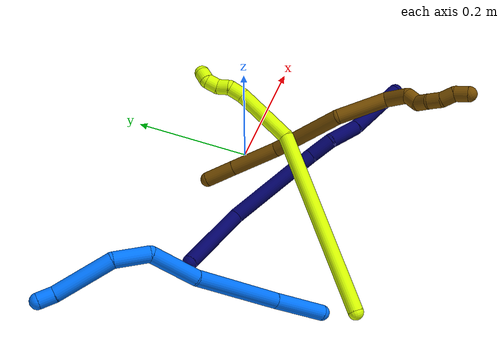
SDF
<sdf version="1.7">
 <world name="default">
  <model name="7">
   <static>0</static>
   <link name="7">
    <collision name="collision-cylinder-e_1_1_4">
     <pose>0.04741 -0.020909 0.041495 0.466748 0.79546 0.19907</pose>
     <geometry><cylinder><radius>0.0125</radius><length>0.132766</length></cylinder></geometry>
     <surface>
      <friction><ode><mu>1.16</mu><mu2>1.16</mu2><slip1>0</slip1><slip2>0</slip2></ode></friction>
      <contact><ode><kp>1e+06</kp><kd>1</kd><max_vel>0</max_vel><min_depth>0.001</min_depth></ode></contact>
     </surface>
    </collision>
    <visual name="visual-cylinder-e_1_1_4">
     <pose>0.04741 -0.020909 0.041495 0.466748 0.79546 0.19907</pose>
     <geometry><cylinder><radius>0.0125</radius><length>0.132766</length></cylinder></geometry>
     <material><ambient>0.003922 0 0.403922 1</ambient></material>
    </visual>
    <collision name="collision-cylinder-e_2_4_5">
     <pose>0.121142 -0.051365 0.159479 0.12418 0.329063 0.020644</pose>
     <geometry><cylinder><radius>0.0125</radius><length>0.162906</length></cylinder></geometry>
     <surface>
      <friction><ode><mu>1.16</mu><mu2>1.16</mu2><slip1>0</slip1><slip2>0</slip2></ode></friction>
      <contact><ode><kp>1e+06</kp><kd>1</kd><max_vel>0</max_vel><min_depth>0.001</min_depth></ode></contact>
     </surface>
    </collision>
    <visual name="visual-cylinder-e_2_4_5">
     <pose>0.121142 -0.051365 0.159479 0.12418 0.329063 0.020644</pose>
     <geometry><cylinder><radius>0.0125</radius><length>0.162906</length></cylinder></geometry>
     <material><ambient>0.003922 0 0.403922 1</ambient></material>
    </visual>
    <collision name="collision-cylinder-e_3_5_6">
     <pose>0.15079 -0.061764 0.256421 0.041601 0.161098 0.003359</pose>
     <geometry><cylinder><radius>0.0125</radius><length>0.041477</length></cylinder></geometry>
     <surface>
      <friction><ode><mu>1.16</mu><mu2>1.16</mu2><slip1>0</slip1><slip2>0</slip2></ode></friction>
      <contact><ode><kp>1e+06</kp><kd>1</kd><max_vel>0</max_vel><min_depth>0.001</min_depth></ode></contact>
     </surface>
    </collision>
    <visual name="visual-cylinder-e_3_5_6">
     <pose>0.15079 -0.061764 0.256421 0.041601 0.161098 0.003359</pose>
     <geometry><cylinder><radius>0.0125</radius><length>0.041477</length></cylinder></geometry>
     <material><ambient>0.003922 0 0.403922 1</ambient></material>
    </visual>
    <collision name="collision-cylinder-e_4_6_7">
     <pose>0.164234 -0.072381 0.299716 0.404002 0.38675 0.080164</pose>
     <geometry><cylinder><radius>0.0125</radius><length>0.053647</length></cylinder></geometry>
     <surface>
      <friction><ode><mu>1.16</mu><mu2>1.16</mu2><slip1>0</slip1><slip2>0</slip2></ode></friction>
      <contact><ode><kp>1e+06</kp><kd>1</kd><max_vel>0</max_vel><min_depth>0.001</min_depth></ode></contact>
     </surface>
    </collision>
    <visual name="visual-cylinder-e_4_6_7">
     <pose>0.164234 -0.072381 0.299716 0.404002 0.38675 0.080164</pose>
     <geometry><cylinder><radius>0.0125</radius><length>0.053647</length></cylinder></geometry>
     <material><ambient>0.003922 0 0.403922 1</ambient></material>
    </visual>
    <collision name="collision-cylinder-e_5_7_2">
     <pose>0.204917 -0.094918 0.365963 0.286173 0.594129 0.08815</pose>
     <geometry><cylinder><radius>0.0125</radius><length>0.109204</length></cylinder></geometry>
     <surface>
      <friction><ode><mu>1.16</mu><mu2>1.16</mu2><slip1>0</slip1><slip2>0</slip2></ode></friction>
      <contact><ode><kp>1e+06</kp><kd>1</kd><max_vel>0</max_vel><min_depth>0.001</min_depth></ode></contact>
     </surface>
    </collision>
    <visual name="visual-cylinder-e_5_7_2">
     <pose>0.204917 -0.094918 0.365963 0.286173 0.594129 0.08815</pose>
     <geometry><cylinder><radius>0.0125</radius><length>0.109204</length></cylinder></geometry>
     <material><ambient>0.003922 0 0.403922 1</ambient></material>
    </visual>
    <collision name="collision-sphere-2">
     <pose>0.235482 -0.10769 0.409368 0 -0 0</pose>
     <geometry><sphere><radius>0.0125</radius></sphere></geometry>
     <surface>
      <friction><ode><mu>1.16</mu><mu2>1.16</mu2><slip1>0</slip1><slip2>0</slip2></ode></friction>
      <contact><ode><kp>1e+06</kp><kd>1</kd><max_vel>0</max_vel><min_depth>0.001</min_depth></ode></contact>
     </surface>
    </collision>
    <visual name="visual-sphere-2">
     <pose>0.235482 -0.10769 0.409368 0 -0 0</pose>
     <geometry><sphere><radius>0.0125</radius></sphere></geometry>
     <material><ambient>0.003922 0 0.403922 1</ambient></material>
    </visual>
    <collision name="collision-sphere-7">
     <pose>0.174351 -0.082146 0.322558 0 -0 0</pose>
     <geometry><sphere><radius>0.0125</radius></sphere></geometry>
     <surface>
      <friction><ode><mu>1.16</mu><mu2>1.16</mu2><slip1>0</slip1><slip2>0</slip2></ode></friction>
      <contact><ode><kp>1e+06</kp><kd>1</kd><max_vel>0</max_vel><min_depth>0.001</min_depth></ode></contact>
     </surface>
    </collision>
    <visual name="visual-sphere-7">
     <pose>0.174351 -0.082146 0.322558 0 -0 0</pose>
     <geometry><sphere><radius>0.0125</radius></sphere></geometry>
     <material><ambient>0.003922 0 0.403922 1</ambient></material>
    </visual>
    <collision name="collision-sphere-6">
     <pose>0.154117 -0.062615 0.276873 0 -0 0</pose>
     <geometry><sphere><radius>0.0125</radius></sphere></geometry>
     <surface>
      <friction><ode><mu>1.16</mu><mu2>1.16</mu2><slip1>0</slip1><slip2>0</slip2></ode></friction>
      <contact><ode><kp>1e+06</kp><kd>1</kd><max_vel>0</max_vel><min_depth>0.001</min_depth></ode></contact>
     </surface>
    </collision>
    <visual name="visual-sphere-6">
     <pose>0.154117 -0.062615 0.276873 0 -0 0</pose>
     <geometry><sphere><radius>0.0125</radius></sphere></geometry>
     <material><ambient>0.003922 0 0.403922 1</ambient></material>
    </visual>
    <collision name="collision-sphere-5">
     <pose>0.147464 -0.060912 0.235969 0 -0 0</pose>
     <geometry><sphere><radius>0.0125</radius></sphere></geometry>
     <surface>
      <friction><ode><mu>1.16</mu><mu2>1.16</mu2><slip1>0</slip1><slip2>0</slip2></ode></friction>
      <contact><ode><kp>1e+06</kp><kd>1</kd><max_vel>0</max_vel><min_depth>0.001</min_depth></ode></contact>
     </surface>
    </collision>
    <visual name="visual-sphere-5">
     <pose>0.147464 -0.060912 0.235969 0 -0 0</pose>
     <geometry><sphere><radius>0.0125</radius></sphere></geometry>
     <material><ambient>0.003922 0 0.403922 1</ambient></material>
    </visual>
    <collision name="collision-sphere-1">
     <geometry><sphere><radius>0.0125</radius></sphere></geometry>
     <surface>
      <friction><ode><mu>1.16</mu><mu2>1.16</mu2><slip1>0</slip1><slip2>0</slip2></ode></friction>
      <contact><ode><kp>1e+06</kp><kd>1</kd><max_vel>0</max_vel><min_depth>0.001</min_depth></ode></contact>
     </surface>
    </collision>
    <visual name="visual-sphere-1">
     <geometry><sphere><radius>0.0125</radius></sphere></geometry>
     <material><ambient>0.003922 0 0.403922 1</ambient></material>
    </visual>
    <collision name="collision-sphere-4">
     <pose>0.09482 -0.041817 0.08299 0 -0 0</pose>
     <geometry><sphere><radius>0.0125</radius></sphere></geometry>
     <surface>
      <friction><ode><mu>1.16</mu><mu2>1.16</mu2><slip1>0</slip1><slip2>0</slip2></ode></friction>
      <contact><ode><kp>1e+06</kp><kd>1</kd><max_vel>0</max_vel><min_depth>0.001</min_depth></ode></contact>
     </surface>
    </collision>
    <visual name="visual-sphere-4">
     <pose>0.09482 -0.041817 0.08299 0 -0 0</pose>
     <geometry><sphere><radius>0.0125</radius></sphere></geometry>
     <material><ambient>0.003922 0 0.403922 1</ambient></material>
    </visual>
    <inertial>
     <pose>0.126944 -0.055908 0.196337 0 -0 0</pose>
     <mass>0.5</mass>
     <inertia>
      <ixx>0.000661</ixx>
      <ixy>0</ixy>
      <ixz>0</ixz>
      <iyy>0.000719</iyy>
      <iyz>0</iyz>
      <izz>-0.000161</izz>
     </inertia>
    </inertial>
   </link>
   <pose>-0.292256 -0.02156 0.075325 1.08365 0.314417 0.596925</pose>
  </model>
  <model name="12">
   <static>0</static>
   <link name="12">
    <collision name="collision-cylinder-e_1_1_4">
     <pose>0.002643 -0.000922 0.025358 0.036334 0.103796 0.001888</pose>
     <geometry><cylinder><radius>0.0125</radius><length>0.051025</length></cylinder></geometry>
     <surface>
      <friction><ode><mu>1.16</mu><mu2>1.16</mu2><slip1>0</slip1><slip2>0</slip2></ode></friction>
      <contact><ode><kp>1e+06</kp><kd>1</kd><max_vel>0</max_vel><min_depth>0.001</min_depth></ode></contact>
     </surface>
    </collision>
    <visual name="visual-cylinder-e_1_1_4">
     <pose>0.002643 -0.000922 0.025358 0.036334 0.103796 0.001888</pose>
     <geometry><cylinder><radius>0.0125</radius><length>0.051025</length></cylinder></geometry>
     <material><ambient>0.466667 0.301961 0 1</ambient></material>
    </visual>
    <collision name="collision-cylinder-e_2_4_5">
     <pose>0.009961 -0.00347 0.091477 0.039872 0.1141 0.002277</pose>
     <geometry><cylinder><radius>0.0125</radius><length>0.08212</length></cylinder></geometry>
     <surface>
      <friction><ode><mu>1.16</mu><mu2>1.16</mu2><slip1>0</slip1><slip2>0</slip2></ode></friction>
      <contact><ode><kp>1e+06</kp><kd>1</kd><max_vel>0</max_vel><min_depth>0.001</min_depth></ode></contact>
     </surface>
    </collision>
    <visual name="visual-cylinder-e_2_4_5">
     <pose>0.009961 -0.00347 0.091477 0.039872 0.1141 0.002277</pose>
     <geometry><cylinder><radius>0.0125</radius><length>0.08212</length></cylinder></geometry>
     <material><ambient>0.466667 0.301961 0 1</ambient></material>
    </visual>
    <collision name="collision-cylinder-e_3_5_6">
     <pose>0.024072 -0.022589 0.193229 0.279321 0.147634 0.020791</pose>
     <geometry><cylinder><radius>0.0125</radius><length>0.128297</length></cylinder></geometry>
     <surface>
      <friction><ode><mu>1.16</mu><mu2>1.16</mu2><slip1>0</slip1><slip2>0</slip2></ode></friction>
      <contact><ode><kp>1e+06</kp><kd>1</kd><max_vel>0</max_vel><min_depth>0.001</min_depth></ode></contact>
     </surface>
    </collision>
    <visual name="visual-cylinder-e_3_5_6">
     <pose>0.024072 -0.022589 0.193229 0.279321 0.147634 0.020791</pose>
     <geometry><cylinder><radius>0.0125</radius><length>0.128297</length></cylinder></geometry>
     <material><ambient>0.466667 0.301961 0 1</ambient></material>
    </visual>
    <collision name="collision-cylinder-e_4_6_7">
     <pose>0.03602 -0.030781 0.294846 -0.225085 0.0602 -0.006806</pose>
     <geometry><cylinder><radius>0.0125</radius><length>0.083504</length></cylinder></geometry>
     <surface>
      <friction><ode><mu>1.16</mu><mu2>1.16</mu2><slip1>0</slip1><slip2>0</slip2></ode></friction>
      <contact><ode><kp>1e+06</kp><kd>1</kd><max_vel>0</max_vel><min_depth>0.001</min_depth></ode></contact>
     </surface>
    </collision>
    <visual name="visual-cylinder-e_4_6_7">
     <pose>0.03602 -0.030781 0.294846 -0.225085 0.0602 -0.006806</pose>
     <geometry><cylinder><radius>0.0125</radius><length>0.083504</length></cylinder></geometry>
     <material><ambient>0.466667 0.301961 0 1</ambient></material>
    </visual>
    <collision name="collision-cylinder-e_5_7_8">
     <pose>0.047589 -0.027808 0.352995 0.346578 0.452441 0.080533</pose>
     <geometry><cylinder><radius>0.0125</radius><length>0.041433</length></cylinder></geometry>
     <surface>
      <friction><ode><mu>1.16</mu><mu2>1.16</mu2><slip1>0</slip1><slip2>0</slip2></ode></friction>
      <contact><ode><kp>1e+06</kp><kd>1</kd><max_vel>0</max_vel><min_depth>0.001</min_depth></ode></contact>
     </surface>
    </collision>
    <visual name="visual-cylinder-e_5_7_8">
     <pose>0.047589 -0.027808 0.352995 0.346578 0.452441 0.080533</pose>
     <geometry><cylinder><radius>0.0125</radius><length>0.041433</length></cylinder></geometry>
     <material><ambient>0.466667 0.301961 0 1</ambient></material>
    </visual>
    <collision name="collision-cylinder-e_6_8_9">
     <pose>0.067299 -0.03524 0.375073 0.237666 1.15645 0.155529</pose>
     <geometry><cylinder><radius>0.0125</radius><length>0.023276</length></cylinder></geometry>
     <surface>
      <friction><ode><mu>1.16</mu><mu2>1.16</mu2><slip1>0</slip1><slip2>0</slip2></ode></friction>
      <contact><ode><kp>1e+06</kp><kd>1</kd><max_vel>0</max_vel><min_depth>0.001</min_depth></ode></contact>
     </surface>
    </collision>
    <visual name="visual-cylinder-e_6_8_9">
     <pose>0.067299 -0.03524 0.375073 0.237666 1.15645 0.155529</pose>
     <geometry><cylinder><radius>0.0125</radius><length>0.023276</length></cylinder></geometry>
     <material><ambient>0.466667 0.301961 0 1</ambient></material>
    </visual>
    <collision name="collision-cylinder-e_7_9_10">
     <pose>0.083464 -0.041154 0.388319 0.505408 0.506578 0.133483</pose>
     <geometry><cylinder><radius>0.0125</radius><length>0.022723</length></cylinder></geometry>
     <surface>
      <friction><ode><mu>1.16</mu><mu2>1.16</mu2><slip1>0</slip1><slip2>0</slip2></ode></friction>
      <contact><ode><kp>1e+06</kp><kd>1</kd><max_vel>0</max_vel><min_depth>0.001</min_depth></ode></contact>
     </surface>
    </collision>
    <visual name="visual-cylinder-e_7_9_10">
     <pose>0.083464 -0.041154 0.388319 0.505408 0.506578 0.133483</pose>
     <geometry><cylinder><radius>0.0125</radius><length>0.022723</length></cylinder></geometry>
     <material><ambient>0.466667 0.301961 0 1</ambient></material>
    </visual>
    <collision name="collision-cylinder-e_8_10_11">
     <pose>0.093779 -0.04742 0.406896 0.146266 0.448062 0.033384</pose>
     <geometry><cylinder><radius>0.0125</radius><length>0.022172</length></cylinder></geometry>
     <surface>
      <friction><ode><mu>1.16</mu><mu2>1.16</mu2><slip1>0</slip1><slip2>0</slip2></ode></friction>
      <contact><ode><kp>1e+06</kp><kd>1</kd><max_vel>0</max_vel><min_depth>0.001</min_depth></ode></contact>
     </surface>
    </collision>
    <visual name="visual-cylinder-e_8_10_11">
     <pose>0.093779 -0.04742 0.406896 0.146266 0.448062 0.033384</pose>
     <geometry><cylinder><radius>0.0125</radius><length>0.022172</length></cylinder></geometry>
     <material><ambient>0.466667 0.301961 0 1</ambient></material>
    </visual>
    <collision name="collision-cylinder-e_9_11_12">
     <pose>0.099859 -0.049952 0.428015 0.095492 0.112625 0.005387</pose>
     <geometry><cylinder><radius>0.0125</radius><length>0.022714</length></cylinder></geometry>
     <surface>
      <friction><ode><mu>1.16</mu><mu2>1.16</mu2><slip1>0</slip1><slip2>0</slip2></ode></friction>
      <contact><ode><kp>1e+06</kp><kd>1</kd><max_vel>0</max_vel><min_depth>0.001</min_depth></ode></contact>
     </surface>
    </collision>
    <visual name="visual-cylinder-e_9_11_12">
     <pose>0.099859 -0.049952 0.428015 0.095492 0.112625 0.005387</pose>
     <geometry><cylinder><radius>0.0125</radius><length>0.022714</length></cylinder></geometry>
     <material><ambient>0.466667 0.301961 0 1</ambient></material>
    </visual>
    <collision name="collision-cylinder-e_10_12_2">
     <pose>0.107182 -0.050905 0.448874 -0.012751 0.560891 -0.003673</pose>
     <geometry><cylinder><radius>0.0125</radius><length>0.022737</length></cylinder></geometry>
     <surface>
      <friction><ode><mu>1.16</mu><mu2>1.16</mu2><slip1>0</slip1><slip2>0</slip2></ode></friction>
      <contact><ode><kp>1e+06</kp><kd>1</kd><max_vel>0</max_vel><min_depth>0.001</min_depth></ode></contact>
     </surface>
    </collision>
    <visual name="visual-cylinder-e_10_12_2">
     <pose>0.107182 -0.050905 0.448874 -0.012751 0.560891 -0.003673</pose>
     <geometry><cylinder><radius>0.0125</radius><length>0.022737</length></cylinder></geometry>
     <material><ambient>0.466667 0.301961 0 1</ambient></material>
    </visual>
    <collision name="collision-sphere-2">
     <pose>0.113229 -0.050783 0.4585 0 -0 0</pose>
     <geometry><sphere><radius>0.0125</radius></sphere></geometry>
     <surface>
      <friction><ode><mu>1.16</mu><mu2>1.16</mu2><slip1>0</slip1><slip2>0</slip2></ode></friction>
      <contact><ode><kp>1e+06</kp><kd>1</kd><max_vel>0</max_vel><min_depth>0.001</min_depth></ode></contact>
     </surface>
    </collision>
    <visual name="visual-sphere-2">
     <pose>0.113229 -0.050783 0.4585 0 -0 0</pose>
     <geometry><sphere><radius>0.0125</radius></sphere></geometry>
     <material><ambient>0.466667 0.301961 0 1</ambient></material>
    </visual>
    <collision name="collision-sphere-12">
     <pose>0.101135 -0.051028 0.439249 0 -0 0</pose>
     <geometry><sphere><radius>0.0125</radius></sphere></geometry>
     <surface>
      <friction><ode><mu>1.16</mu><mu2>1.16</mu2><slip1>0</slip1><slip2>0</slip2></ode></friction>
      <contact><ode><kp>1e+06</kp><kd>1</kd><max_vel>0</max_vel><min_depth>0.001</min_depth></ode></contact>
     </surface>
    </collision>
    <visual name="visual-sphere-12">
     <pose>0.101135 -0.051028 0.439249 0 -0 0</pose>
     <geometry><sphere><radius>0.0125</radius></sphere></geometry>
     <material><ambient>0.466667 0.301961 0 1</ambient></material>
    </visual>
    <collision name="collision-sphere-11">
     <pose>0.098582 -0.048876 0.416781 0 -0 0</pose>
     <geometry><sphere><radius>0.0125</radius></sphere></geometry>
     <surface>
      <friction><ode><mu>1.16</mu><mu2>1.16</mu2><slip1>0</slip1><slip2>0</slip2></ode></friction>
      <contact><ode><kp>1e+06</kp><kd>1</kd><max_vel>0</max_vel><min_depth>0.001</min_depth></ode></contact>
     </surface>
    </collision>
    <visual name="visual-sphere-11">
     <pose>0.098582 -0.048876 0.416781 0 -0 0</pose>
     <geometry><sphere><radius>0.0125</radius></sphere></geometry>
     <material><ambient>0.466667 0.301961 0 1</ambient></material>
    </visual>
    <collision name="collision-sphere-10">
     <pose>0.088977 -0.045964 0.397012 0 -0 0</pose>
     <geometry><sphere><radius>0.0125</radius></sphere></geometry>
     <surface>
      <friction><ode><mu>1.16</mu><mu2>1.16</mu2><slip1>0</slip1><slip2>0</slip2></ode></friction>
      <contact><ode><kp>1e+06</kp><kd>1</kd><max_vel>0</max_vel><min_depth>0.001</min_depth></ode></contact>
     </surface>
    </collision>
    <visual name="visual-sphere-10">
     <pose>0.088977 -0.045964 0.397012 0 -0 0</pose>
     <geometry><sphere><radius>0.0125</radius></sphere></geometry>
     <material><ambient>0.466667 0.301961 0 1</ambient></material>
    </visual>
    <collision name="collision-sphere-9">
     <pose>0.077952 -0.036344 0.379626 0 -0 0</pose>
     <geometry><sphere><radius>0.0125</radius></sphere></geometry>
     <surface>
      <friction><ode><mu>1.16</mu><mu2>1.16</mu2><slip1>0</slip1><slip2>0</slip2></ode></friction>
      <contact><ode><kp>1e+06</kp><kd>1</kd><max_vel>0</max_vel><min_depth>0.001</min_depth></ode></contact>
     </surface>
    </collision>
    <visual name="visual-sphere-9">
     <pose>0.077952 -0.036344 0.379626 0 -0 0</pose>
     <geometry><sphere><radius>0.0125</radius></sphere></geometry>
     <material><ambient>0.466667 0.301961 0 1</ambient></material>
    </visual>
    <collision name="collision-sphere-4">
     <pose>0.005287 -0.001844 0.050717 0 -0 0</pose>
     <geometry><sphere><radius>0.0125</radius></sphere></geometry>
     <surface>
      <friction><ode><mu>1.16</mu><mu2>1.16</mu2><slip1>0</slip1><slip2>0</slip2></ode></friction>
      <contact><ode><kp>1e+06</kp><kd>1</kd><max_vel>0</max_vel><min_depth>0.001</min_depth></ode></contact>
     </surface>
    </collision>
    <visual name="visual-sphere-4">
     <pose>0.005287 -0.001844 0.050717 0 -0 0</pose>
     <geometry><sphere><radius>0.0125</radius></sphere></geometry>
     <material><ambient>0.466667 0.301961 0 1</ambient></material>
    </visual>
    <collision name="collision-sphere-1">
     <geometry><sphere><radius>0.0125</radius></sphere></geometry>
     <surface>
      <friction><ode><mu>1.16</mu><mu2>1.16</mu2><slip1>0</slip1><slip2>0</slip2></ode></friction>
      <contact><ode><kp>1e+06</kp><kd>1</kd><max_vel>0</max_vel><min_depth>0.001</min_depth></ode></contact>
     </surface>
    </collision>
    <visual name="visual-sphere-1">
     <geometry><sphere><radius>0.0125</radius></sphere></geometry>
     <material><ambient>0.466667 0.301961 0 1</ambient></material>
    </visual>
    <collision name="collision-sphere-8">
     <pose>0.056645 -0.034137 0.370519 0 -0 0</pose>
     <geometry><sphere><radius>0.0125</radius></sphere></geometry>
     <surface>
      <friction><ode><mu>1.16</mu><mu2>1.16</mu2><slip1>0</slip1><slip2>0</slip2></ode></friction>
      <contact><ode><kp>1e+06</kp><kd>1</kd><max_vel>0</max_vel><min_depth>0.001</min_depth></ode></contact>
     </surface>
    </collision>
    <visual name="visual-sphere-8">
     <pose>0.056645 -0.034137 0.370519 0 -0 0</pose>
     <geometry><sphere><radius>0.0125</radius></sphere></geometry>
     <material><ambient>0.466667 0.301961 0 1</ambient></material>
    </visual>
    <collision name="collision-sphere-5">
     <pose>0.014636 -0.005096 0.132238 0 -0 0</pose>
     <geometry><sphere><radius>0.0125</radius></sphere></geometry>
     <surface>
      <friction><ode><mu>1.16</mu><mu2>1.16</mu2><slip1>0</slip1><slip2>0</slip2></ode></friction>
      <contact><ode><kp>1e+06</kp><kd>1</kd><max_vel>0</max_vel><min_depth>0.001</min_depth></ode></contact>
     </surface>
    </collision>
    <visual name="visual-sphere-5">
     <pose>0.014636 -0.005096 0.132238 0 -0 0</pose>
     <geometry><sphere><radius>0.0125</radius></sphere></geometry>
     <material><ambient>0.466667 0.301961 0 1</ambient></material>
    </visual>
    <collision name="collision-sphere-6">
     <pose>0.033508 -0.040083 0.254221 0 -0 0</pose>
     <geometry><sphere><radius>0.0125</radius></sphere></geometry>
     <surface>
      <friction><ode><mu>1.16</mu><mu2>1.16</mu2><slip1>0</slip1><slip2>0</slip2></ode></friction>
      <contact><ode><kp>1e+06</kp><kd>1</kd><max_vel>0</max_vel><min_depth>0.001</min_depth></ode></contact>
     </surface>
    </collision>
    <visual name="visual-sphere-6">
     <pose>0.033508 -0.040083 0.254221 0 -0 0</pose>
     <geometry><sphere><radius>0.0125</radius></sphere></geometry>
     <material><ambient>0.466667 0.301961 0 1</ambient></material>
    </visual>
    <collision name="collision-sphere-7">
     <pose>0.038532 -0.021479 0.335471 0 -0 0</pose>
     <geometry><sphere><radius>0.0125</radius></sphere></geometry>
     <surface>
      <friction><ode><mu>1.16</mu><mu2>1.16</mu2><slip1>0</slip1><slip2>0</slip2></ode></friction>
      <contact><ode><kp>1e+06</kp><kd>1</kd><max_vel>0</max_vel><min_depth>0.001</min_depth></ode></contact>
     </surface>
    </collision>
    <visual name="visual-sphere-7">
     <pose>0.038532 -0.021479 0.335471 0 -0 0</pose>
     <geometry><sphere><radius>0.0125</radius></sphere></geometry>
     <material><ambient>0.466667 0.301961 0 1</ambient></material>
    </visual>
    <inertial>
     <pose>0.038537 -0.024103 0.238693 0 -0 0</pose>
     <mass>0.5</mass>
     <inertia><ixx>0.00032</ixx><ixy>0</ixy><ixz>0</ixz><iyy>0.000304</iyy><iyz>0</iyz><izz>3.5e-05</izz></inertia>
    </inertial>
   </link>
   <pose>-0.082277 0.036148 0.011572 -1.09295 0.189435 -2.42404</pose>
  </model>
  <model name="14">
   <static>0</static>
   <link name="14">
    <collision name="collision-cylinder-e_1_1_4">
     <pose>0.023398 0.03449 -0.014174 -1.96071 0.560381 -0.81113</pose>
     <geometry><cylinder><radius>0.0125</radius><length>0.088043</length></cylinder></geometry>
     <surface>
      <friction><ode><mu>1.16</mu><mu2>1.16</mu2><slip1>0</slip1><slip2>0</slip2></ode></friction>
      <contact><ode><kp>1e+06</kp><kd>1</kd><max_vel>0</max_vel><min_depth>0.001</min_depth></ode></contact>
     </surface>
    </collision>
    <visual name="visual-cylinder-e_1_1_4">
     <pose>0.023398 0.03449 -0.014174 -1.96071 0.560381 -0.81113</pose>
     <geometry><cylinder><radius>0.0125</radius><length>0.088043</length></cylinder></geometry>
     <material><ambient>0 0.462745 1 1</ambient></material>
    </visual>
    <collision name="collision-cylinder-e_2_4_5">
     <pose>0.079578 0.130131 -0.06179 -2.07124 0.439642 -0.720781</pose>
     <geometry><cylinder><radius>0.0125</radius><length>0.154047</length></cylinder></geometry>
     <surface>
      <friction><ode><mu>1.16</mu><mu2>1.16</mu2><slip1>0</slip1><slip2>0</slip2></ode></friction>
      <contact><ode><kp>1e+06</kp><kd>1</kd><max_vel>0</max_vel><min_depth>0.001</min_depth></ode></contact>
     </surface>
    </collision>
    <visual name="visual-cylinder-e_2_4_5">
     <pose>0.079578 0.130131 -0.06179 -2.07124 0.439642 -0.720781</pose>
     <geometry><cylinder><radius>0.0125</radius><length>0.154047</length></cylinder></geometry>
     <material><ambient>0 0.462745 1 1</ambient></material>
    </visual>
    <collision name="collision-cylinder-e_3_5_6">
     <pose>0.128784 0.227933 -0.104245 -1.81195 0.410436 -0.519104</pose>
     <geometry><cylinder><radius>0.0125</radius><length>0.082321</length></cylinder></geometry>
     <surface>
      <friction><ode><mu>1.16</mu><mu2>1.16</mu2><slip1>0</slip1><slip2>0</slip2></ode></friction>
      <contact><ode><kp>1e+06</kp><kd>1</kd><max_vel>0</max_vel><min_depth>0.001</min_depth></ode></contact>
     </surface>
    </collision>
    <visual name="visual-cylinder-e_3_5_6">
     <pose>0.128784 0.227933 -0.104245 -1.81195 0.410436 -0.519104</pose>
     <geometry><cylinder><radius>0.0125</radius><length>0.082321</length></cylinder></geometry>
     <material><ambient>0 0.462745 1 1</ambient></material>
    </visual>
    <collision name="collision-cylinder-e_4_6_7">
     <pose>0.168842 0.276734 -0.121604 -2.17257 1.01313 -1.62351</pose>
     <geometry><cylinder><radius>0.0125</radius><length>0.05571</length></cylinder></geometry>
     <surface>
      <friction><ode><mu>1.16</mu><mu2>1.16</mu2><slip1>0</slip1><slip2>0</slip2></ode></friction>
      <contact><ode><kp>1e+06</kp><kd>1</kd><max_vel>0</max_vel><min_depth>0.001</min_depth></ode></contact>
     </surface>
    </collision>
    <visual name="visual-cylinder-e_4_6_7">
     <pose>0.168842 0.276734 -0.121604 -2.17257 1.01313 -1.62351</pose>
     <geometry><cylinder><radius>0.0125</radius><length>0.05571</length></cylinder></geometry>
     <material><ambient>0 0.462745 1 1</ambient></material>
    </visual>
    <collision name="collision-cylinder-e_5_7_8">
     <pose>0.237558 0.290734 -0.143626 -3.00731 1.27371 -2.96027</pose>
     <geometry><cylinder><radius>0.0125</radius><length>0.094292</length></cylinder></geometry>
     <surface>
      <friction><ode><mu>1.16</mu><mu2>1.16</mu2><slip1>0</slip1><slip2>0</slip2></ode></friction>
      <contact><ode><kp>1e+06</kp><kd>1</kd><max_vel>0</max_vel><min_depth>0.001</min_depth></ode></contact>
     </surface>
    </collision>
    <visual name="visual-cylinder-e_5_7_8">
     <pose>0.237558 0.290734 -0.143626 -3.00731 1.27371 -2.96027</pose>
     <geometry><cylinder><radius>0.0125</radius><length>0.094292</length></cylinder></geometry>
     <material><ambient>0 0.462745 1 1</ambient></material>
    </visual>
    <collision name="collision-cylinder-e_6_8_2">
     <pose>0.294417 0.295341 -0.161466 -2.55618 1.16972 -2.28736</pose>
     <geometry><cylinder><radius>0.0125</radius><length>0.025587</length></cylinder></geometry>
     <surface>
      <friction><ode><mu>1.16</mu><mu2>1.16</mu2><slip1>0</slip1><slip2>0</slip2></ode></friction>
      <contact><ode><kp>1e+06</kp><kd>1</kd><max_vel>0</max_vel><min_depth>0.001</min_depth></ode></contact>
     </surface>
    </collision>
    <visual name="visual-cylinder-e_6_8_2">
     <pose>0.294417 0.295341 -0.161466 -2.55618 1.16972 -2.28736</pose>
     <geometry><cylinder><radius>0.0125</radius><length>0.025587</length></cylinder></geometry>
     <material><ambient>0 0.462745 1 1</ambient></material>
    </visual>
    <collision name="collision-sphere-2">
     <pose>0.306195 0.298101 -0.165629 0 -0 0</pose>
     <geometry><sphere><radius>0.0125</radius></sphere></geometry>
     <surface>
      <friction><ode><mu>1.16</mu><mu2>1.16</mu2><slip1>0</slip1><slip2>0</slip2></ode></friction>
      <contact><ode><kp>1e+06</kp><kd>1</kd><max_vel>0</max_vel><min_depth>0.001</min_depth></ode></contact>
     </surface>
    </collision>
    <visual name="visual-sphere-2">
     <pose>0.306195 0.298101 -0.165629 0 -0 0</pose>
     <geometry><sphere><radius>0.0125</radius></sphere></geometry>
     <material><ambient>0 0.462745 1 1</ambient></material>
    </visual>
    <collision name="collision-sphere-4">
     <pose>0.046796 0.068979 -0.028347 0 -0 0</pose>
     <geometry><sphere><radius>0.0125</radius></sphere></geometry>
     <surface>
      <friction><ode><mu>1.16</mu><mu2>1.16</mu2><slip1>0</slip1><slip2>0</slip2></ode></friction>
      <contact><ode><kp>1e+06</kp><kd>1</kd><max_vel>0</max_vel><min_depth>0.001</min_depth></ode></contact>
     </surface>
    </collision>
    <visual name="visual-sphere-4">
     <pose>0.046796 0.068979 -0.028347 0 -0 0</pose>
     <geometry><sphere><radius>0.0125</radius></sphere></geometry>
     <material><ambient>0 0.462745 1 1</ambient></material>
    </visual>
    <collision name="collision-sphere-1">
     <geometry><sphere><radius>0.0125</radius></sphere></geometry>
     <surface>
      <friction><ode><mu>1.16</mu><mu2>1.16</mu2><slip1>0</slip1><slip2>0</slip2></ode></friction>
      <contact><ode><kp>1e+06</kp><kd>1</kd><max_vel>0</max_vel><min_depth>0.001</min_depth></ode></contact>
     </surface>
    </collision>
    <visual name="visual-sphere-1">
     <geometry><sphere><radius>0.0125</radius></sphere></geometry>
     <material><ambient>0 0.462745 1 1</ambient></material>
    </visual>
    <collision name="collision-sphere-8">
     <pose>0.282639 0.292581 -0.157304 0 -0 0</pose>
     <geometry><sphere><radius>0.0125</radius></sphere></geometry>
     <surface>
      <friction><ode><mu>1.16</mu><mu2>1.16</mu2><slip1>0</slip1><slip2>0</slip2></ode></friction>
      <contact><ode><kp>1e+06</kp><kd>1</kd><max_vel>0</max_vel><min_depth>0.001</min_depth></ode></contact>
     </surface>
    </collision>
    <visual name="visual-sphere-8">
     <pose>0.282639 0.292581 -0.157304 0 -0 0</pose>
     <geometry><sphere><radius>0.0125</radius></sphere></geometry>
     <material><ambient>0 0.462745 1 1</ambient></material>
    </visual>
    <collision name="collision-sphere-5">
     <pose>0.11236 0.191283 -0.095232 0 -0 0</pose>
     <geometry><sphere><radius>0.0125</radius></sphere></geometry>
     <surface>
      <friction><ode><mu>1.16</mu><mu2>1.16</mu2><slip1>0</slip1><slip2>0</slip2></ode></friction>
      <contact><ode><kp>1e+06</kp><kd>1</kd><max_vel>0</max_vel><min_depth>0.001</min_depth></ode></contact>
     </surface>
    </collision>
    <visual name="visual-sphere-5">
     <pose>0.11236 0.191283 -0.095232 0 -0 0</pose>
     <geometry><sphere><radius>0.0125</radius></sphere></geometry>
     <material><ambient>0 0.462745 1 1</ambient></material>
    </visual>
    <collision name="collision-sphere-6">
     <pose>0.145207 0.264583 -0.113259 0 -0 0</pose>
     <geometry><sphere><radius>0.0125</radius></sphere></geometry>
     <surface>
      <friction><ode><mu>1.16</mu><mu2>1.16</mu2><slip1>0</slip1><slip2>0</slip2></ode></friction>
      <contact><ode><kp>1e+06</kp><kd>1</kd><max_vel>0</max_vel><min_depth>0.001</min_depth></ode></contact>
     </surface>
    </collision>
    <visual name="visual-sphere-6">
     <pose>0.145207 0.264583 -0.113259 0 -0 0</pose>
     <geometry><sphere><radius>0.0125</radius></sphere></geometry>
     <material><ambient>0 0.462745 1 1</ambient></material>
    </visual>
    <collision name="collision-sphere-7">
     <pose>0.192477 0.288886 -0.129949 0 -0 0</pose>
     <geometry><sphere><radius>0.0125</radius></sphere></geometry>
     <surface>
      <friction><ode><mu>1.16</mu><mu2>1.16</mu2><slip1>0</slip1><slip2>0</slip2></ode></friction>
      <contact><ode><kp>1e+06</kp><kd>1</kd><max_vel>0</max_vel><min_depth>0.001</min_depth></ode></contact>
     </surface>
    </collision>
    <visual name="visual-sphere-7">
     <pose>0.192477 0.288886 -0.129949 0 -0 0</pose>
     <geometry><sphere><radius>0.0125</radius></sphere></geometry>
     <material><ambient>0 0.462745 1 1</ambient></material>
    </visual>
    <inertial>
     <pose>0.128519 0.184468 -0.087594 0 -0 0</pose>
     <mass>0.5</mass>
     <inertia>
      <ixx>2.9e-05</ixx>
      <ixy>0</ixy>
      <ixz>0</ixz>
      <iyy>-0.000178</iyy>
      <iyz>0</iyz>
      <izz>-0.000632</izz>
     </inertia>
    </inertial>
   </link>
   <pose>-0.268611 -0.23289 0.011498 2.10675 0.438512 2.17921</pose>
  </model>
  <model name="15">
   <static>0</static>
   <link name="15">
    <collision name="collision-cylinder-e_1_1_4">
     <pose>0.153214 0.010122 -0.032156 -2.83663 1.35422 -2.76383</pose>
     <geometry><cylinder><radius>0.0125</radius><length>0.313757</length></cylinder></geometry>
     <surface>
      <friction><ode><mu>1.16</mu><mu2>1.16</mu2><slip1>0</slip1><slip2>0</slip2></ode></friction>
      <contact><ode><kp>1e+06</kp><kd>1</kd><max_vel>0</max_vel><min_depth>0.001</min_depth></ode></contact>
     </surface>
    </collision>
    <visual name="visual-cylinder-e_1_1_4">
     <pose>0.153214 0.010122 -0.032156 -2.83663 1.35422 -2.76383</pose>
     <geometry><cylinder><radius>0.0125</radius><length>0.313757</length></cylinder></geometry>
     <material><ambient>0.835294 1 0 1</ambient></material>
    </visual>
    <collision name="collision-cylinder-e_2_4_5">
     <pose>0.354926 0.027541 -0.053188 -0.580566 1.30307 -0.447982</pose>
     <geometry><cylinder><radius>0.0125</radius><length>0.10058</length></cylinder></geometry>
     <surface>
      <friction><ode><mu>1.16</mu><mu2>1.16</mu2><slip1>0</slip1><slip2>0</slip2></ode></friction>
      <contact><ode><kp>1e+06</kp><kd>1</kd><max_vel>0</max_vel><min_depth>0.001</min_depth></ode></contact>
     </surface>
    </collision>
    <visual name="visual-cylinder-e_2_4_5">
     <pose>0.354926 0.027541 -0.053188 -0.580566 1.30307 -0.447982</pose>
     <geometry><cylinder><radius>0.0125</radius><length>0.10058</length></cylinder></geometry>
     <material><ambient>0.835294 1 0 1</ambient></material>
    </visual>
    <collision name="collision-cylinder-e_3_5_6">
     <pose>0.414104 0.034439 -0.035285 0.058829 1.00441 0.032314</pose>
     <geometry><cylinder><radius>0.0125</radius><length>0.025312</length></cylinder></geometry>
     <surface>
      <friction><ode><mu>1.16</mu><mu2>1.16</mu2><slip1>0</slip1><slip2>0</slip2></ode></friction>
      <contact><ode><kp>1e+06</kp><kd>1</kd><max_vel>0</max_vel><min_depth>0.001</min_depth></ode></contact>
     </surface>
    </collision>
    <visual name="visual-cylinder-e_3_5_6">
     <pose>0.414104 0.034439 -0.035285 0.058829 1.00441 0.032314</pose>
     <geometry><cylinder><radius>0.0125</radius><length>0.025312</length></cylinder></geometry>
     <material><ambient>0.835294 1 0 1</ambient></material>
    </visual>
    <collision name="collision-cylinder-e_4_6_7">
     <pose>0.430838 0.039015 -0.022087 -0.659419 0.64059 -0.22606</pose>
     <geometry><cylinder><radius>0.0125</radius><length>0.02026</length></cylinder></geometry>
     <surface>
      <friction><ode><mu>1.16</mu><mu2>1.16</mu2><slip1>0</slip1><slip2>0</slip2></ode></friction>
      <contact><ode><kp>1e+06</kp><kd>1</kd><max_vel>0</max_vel><min_depth>0.001</min_depth></ode></contact>
     </surface>
    </collision>
    <visual name="visual-cylinder-e_4_6_7">
     <pose>0.430838 0.039015 -0.022087 -0.659419 0.64059 -0.22606</pose>
     <geometry><cylinder><radius>0.0125</radius><length>0.02026</length></cylinder></geometry>
     <material><ambient>0.835294 1 0 1</ambient></material>
    </visual>
    <collision name="collision-cylinder-e_5_7_8">
     <pose>0.445391 0.045204 -0.0105 -0.230603 1.01248 -0.128248</pose>
     <geometry><cylinder><radius>0.0125</radius><length>0.020042</length></cylinder></geometry>
     <surface>
      <friction><ode><mu>1.16</mu><mu2>1.16</mu2><slip1>0</slip1><slip2>0</slip2></ode></friction>
      <contact><ode><kp>1e+06</kp><kd>1</kd><max_vel>0</max_vel><min_depth>0.001</min_depth></ode></contact>
     </surface>
    </collision>
    <visual name="visual-cylinder-e_5_7_8">
     <pose>0.445391 0.045204 -0.0105 -0.230603 1.01248 -0.128248</pose>
     <geometry><cylinder><radius>0.0125</radius><length>0.020042</length></cylinder></geometry>
     <material><ambient>0.835294 1 0 1</ambient></material>
    </visual>
    <collision name="collision-cylinder-e_6_8_2">
     <pose>0.463003 0.050296 -0.006889 -1.95258 1.1408 -1.51835</pose>
     <geometry><cylinder><radius>0.0125</radius><length>0.020049</length></cylinder></geometry>
     <surface>
      <friction><ode><mu>1.16</mu><mu2>1.16</mu2><slip1>0</slip1><slip2>0</slip2></ode></friction>
      <contact><ode><kp>1e+06</kp><kd>1</kd><max_vel>0</max_vel><min_depth>0.001</min_depth></ode></contact>
     </surface>
    </collision>
    <visual name="visual-cylinder-e_6_8_2">
     <pose>0.463003 0.050296 -0.006889 -1.95258 1.1408 -1.51835</pose>
     <geometry><cylinder><radius>0.0125</radius><length>0.020049</length></cylinder></geometry>
     <material><ambient>0.835294 1 0 1</ambient></material>
    </visual>
    <collision name="collision-sphere-2">
     <pose>0.472115 0.054174 -0.008446 0 -0 0</pose>
     <geometry><sphere><radius>0.0125</radius></sphere></geometry>
     <surface>
      <friction><ode><mu>1.16</mu><mu2>1.16</mu2><slip1>0</slip1><slip2>0</slip2></ode></friction>
      <contact><ode><kp>1e+06</kp><kd>1</kd><max_vel>0</max_vel><min_depth>0.001</min_depth></ode></contact>
     </surface>
    </collision>
    <visual name="visual-sphere-2">
     <pose>0.472115 0.054174 -0.008446 0 -0 0</pose>
     <geometry><sphere><radius>0.0125</radius></sphere></geometry>
     <material><ambient>0.835294 1 0 1</ambient></material>
    </visual>
    <collision name="collision-sphere-4">
     <pose>0.306427 0.020244 -0.064312 0 -0 0</pose>
     <geometry><sphere><radius>0.0125</radius></sphere></geometry>
     <surface>
      <friction><ode><mu>1.16</mu><mu2>1.16</mu2><slip1>0</slip1><slip2>0</slip2></ode></friction>
      <contact><ode><kp>1e+06</kp><kd>1</kd><max_vel>0</max_vel><min_depth>0.001</min_depth></ode></contact>
     </surface>
    </collision>
    <visual name="visual-sphere-4">
     <pose>0.306427 0.020244 -0.064312 0 -0 0</pose>
     <geometry><sphere><radius>0.0125</radius></sphere></geometry>
     <material><ambient>0.835294 1 0 1</ambient></material>
    </visual>
    <collision name="collision-sphere-1">
     <geometry><sphere><radius>0.0125</radius></sphere></geometry>
     <surface>
      <friction><ode><mu>1.16</mu><mu2>1.16</mu2><slip1>0</slip1><slip2>0</slip2></ode></friction>
      <contact><ode><kp>1e+06</kp><kd>1</kd><max_vel>0</max_vel><min_depth>0.001</min_depth></ode></contact>
     </surface>
    </collision>
    <visual name="visual-sphere-1">
     <geometry><sphere><radius>0.0125</radius></sphere></geometry>
     <material><ambient>0.835294 1 0 1</ambient></material>
    </visual>
    <collision name="collision-sphere-8">
     <pose>0.453891 0.046418 -0.005332 0 -0 0</pose>
     <geometry><sphere><radius>0.0125</radius></sphere></geometry>
     <surface>
      <friction><ode><mu>1.16</mu><mu2>1.16</mu2><slip1>0</slip1><slip2>0</slip2></ode></friction>
      <contact><ode><kp>1e+06</kp><kd>1</kd><max_vel>0</max_vel><min_depth>0.001</min_depth></ode></contact>
     </surface>
    </collision>
    <visual name="visual-sphere-8">
     <pose>0.453891 0.046418 -0.005332 0 -0 0</pose>
     <geometry><sphere><radius>0.0125</radius></sphere></geometry>
     <material><ambient>0.835294 1 0 1</ambient></material>
    </visual>
    <collision name="collision-sphere-5">
     <pose>0.403424 0.034838 -0.042064 0 -0 0</pose>
     <geometry><sphere><radius>0.0125</radius></sphere></geometry>
     <surface>
      <friction><ode><mu>1.16</mu><mu2>1.16</mu2><slip1>0</slip1><slip2>0</slip2></ode></friction>
      <contact><ode><kp>1e+06</kp><kd>1</kd><max_vel>0</max_vel><min_depth>0.001</min_depth></ode></contact>
     </surface>
    </collision>
    <visual name="visual-sphere-5">
     <pose>0.403424 0.034838 -0.042064 0 -0 0</pose>
     <geometry><sphere><radius>0.0125</radius></sphere></geometry>
     <material><ambient>0.835294 1 0 1</ambient></material>
    </visual>
    <collision name="collision-sphere-6">
     <pose>0.424784 0.03404 -0.028506 0 -0 0</pose>
     <geometry><sphere><radius>0.0125</radius></sphere></geometry>
     <surface>
      <friction><ode><mu>1.16</mu><mu2>1.16</mu2><slip1>0</slip1><slip2>0</slip2></ode></friction>
      <contact><ode><kp>1e+06</kp><kd>1</kd><max_vel>0</max_vel><min_depth>0.001</min_depth></ode></contact>
     </surface>
    </collision>
    <visual name="visual-sphere-6">
     <pose>0.424784 0.03404 -0.028506 0 -0 0</pose>
     <geometry><sphere><radius>0.0125</radius></sphere></geometry>
     <material><ambient>0.835294 1 0 1</ambient></material>
    </visual>
    <collision name="collision-sphere-7">
     <pose>0.436892 0.043991 -0.015668 0 -0 0</pose>
     <geometry><sphere><radius>0.0125</radius></sphere></geometry>
     <surface>
      <friction><ode><mu>1.16</mu><mu2>1.16</mu2><slip1>0</slip1><slip2>0</slip2></ode></friction>
      <contact><ode><kp>1e+06</kp><kd>1</kd><max_vel>0</max_vel><min_depth>0.001</min_depth></ode></contact>
     </surface>
    </collision>
    <visual name="visual-sphere-7">
     <pose>0.436892 0.043991 -0.015668 0 -0 0</pose>
     <geometry><sphere><radius>0.0125</radius></sphere></geometry>
     <material><ambient>0.835294 1 0 1</ambient></material>
    </visual>
    <inertial>
     <pose>0.24238 0.019045 -0.034256 0 -0 0</pose>
     <mass>0.5</mass>
     <inertia>
      <ixx>-0.000671</ixx>
      <ixy>0</ixy>
      <ixz>0</ixz>
      <iyy>0.002454</iyy>
      <iyz>0</iyz>
      <izz>-0.002799</izz>
     </inertia>
    </inertial>
   </link>
   <pose>-0.261382 -0.285977 0.031101 -1.46 -0.399872 0.932688</pose>
  </model>
 </world>
</sdf>
